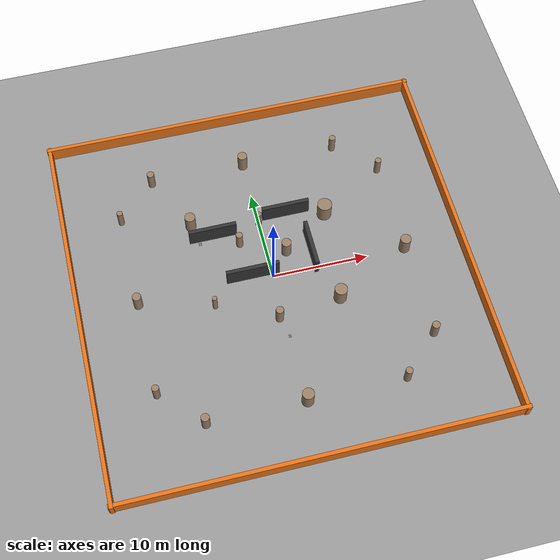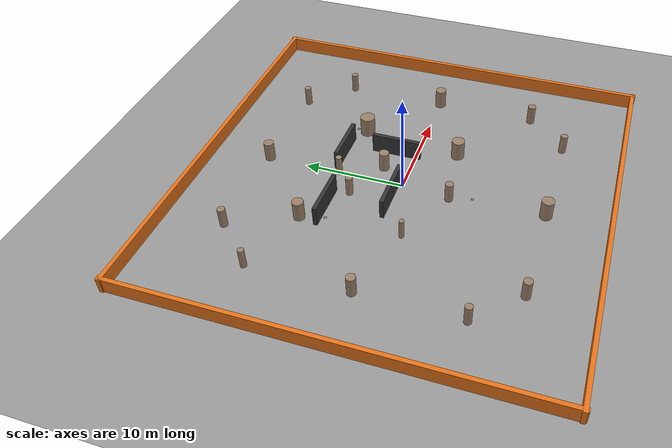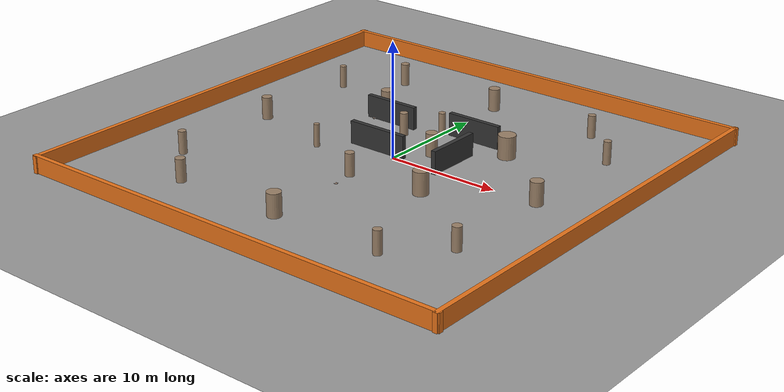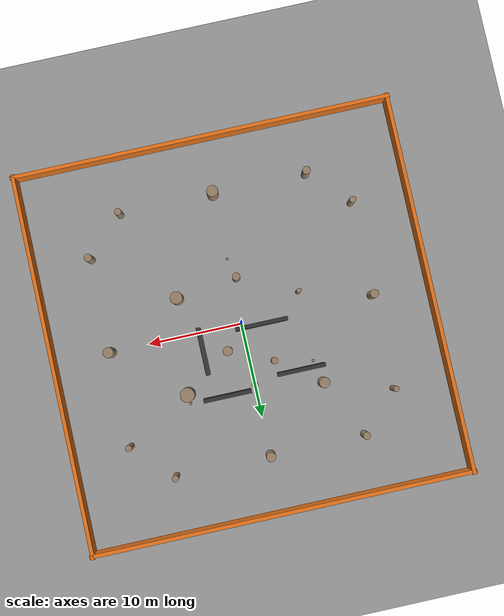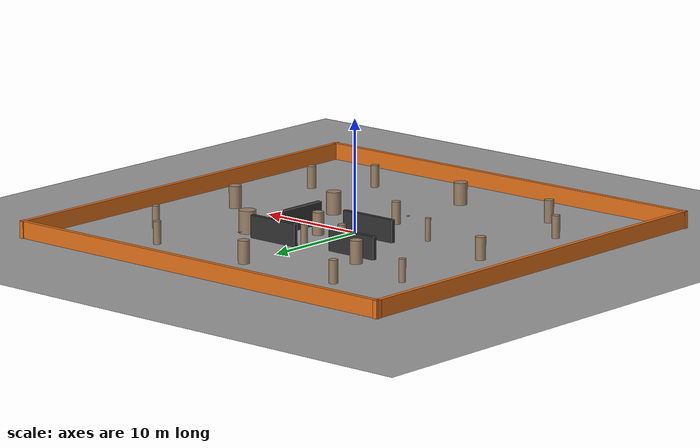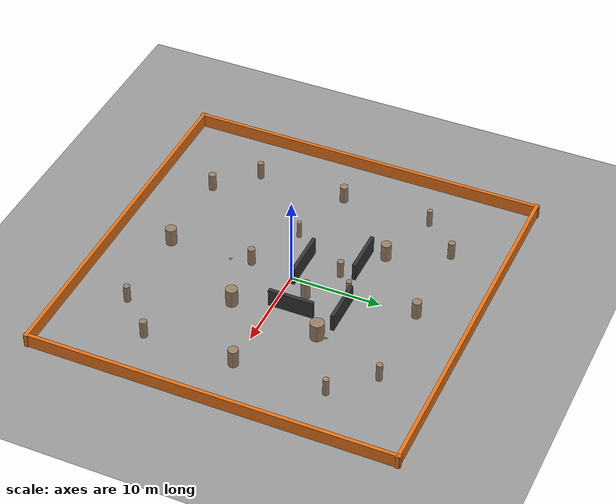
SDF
<sdf version="1.9">
 <world name="playfield">
  <physics name="4ms" type="ode">
   <max_step_size>0.004</max_step_size>
   <real_time_factor>1.0</real_time_factor>
   <real_time_update_rate>250</real_time_update_rate>
  </physics>
  <plugin filename="gz-sim-physics-system" name="gz::sim::systems::Physics"/>
  <plugin filename="gz-sim-user-commands-system" name="gz::sim::systems::UserCommands"/>
  <plugin filename="gz-sim-contact-system" name="gz::sim::systems::Contact"/>
  <plugin filename="gz-sim-imu-system" name="gz::sim::systems::Imu"/>
  <plugin filename="gz-sim-air-pressure-system" name="gz::sim::systems::AirPressure"/>
  <plugin filename="gz-sim-apply-link-wrench-system" name="gz::sim::systems::ApplyLinkWrench"/>
  <plugin filename="gz-sim-navsat-system" name="gz::sim::systems::NavSat"/>
  <plugin filename="gz-sim-sensors-system" name="gz::sim::systems::Sensors">
   <render_engine>ogre2</render_engine>
  </plugin>
  <plugin filename="gz-sim-scene-broadcaster-system" name="gz::sim::systems::SceneBroadcaster"/>
  <light type="directional" name="sun">
   <cast_shadows>false</cast_shadows>
   <pose>0 0 10 0 0 0</pose>
   <diffuse>0.8 0.8 0.8 1</diffuse>
   <specular>0.2 0.2 0.2 1</specular>
   <attenuation>
    <range>1000</range>
    <constant>0.9</constant>
    <linear>0.01</linear>
    <quadratic>0.001</quadratic>
   </attenuation>
   <direction>-0.5 0.1 -0.9</direction>
  </light>
  <model name="ground_plane">
   <static>true</static>
   <link name="link">
    <collision name="collision">
     <geometry><plane><normal>0 0 1</normal><size>40 40</size></plane></geometry>
    </collision>
    <visual name="visual">
     <geometry><plane><normal>0 0 1</normal><size>40 40</size></plane></geometry>
     <material>
      <ambient>0.6 0.6 0.6 1</ambient>
      <diffuse>0.6 0.6 0.6 1</diffuse>
      <specular>0.2 0.2 0.2 1</specular>
     </material>
    </visual>
   </link>
  </model>
  <model name="perimeter_wall_north">
   <static>true</static>
   <pose>0 20 0 0 0 0</pose>
   <link name="link">
    <collision name="collision">
     <pose>0 0 0.75 0 0 0</pose>
     <geometry><box><size>40.6 0.4 1.5</size></box></geometry>
    </collision>
    <visual name="visual">
     <pose>0 0 0.75 0 0 0</pose>
     <geometry><box><size>40.6 0.4 1.5</size></box></geometry>
     <material><ambient>0.9 0.45 0.1 1</ambient><diffuse>0.9 0.45 0.1 1</diffuse></material>
    </visual>
   </link>
  </model>
  <model name="perimeter_wall_south">
   <static>true</static>
   <pose>0 -20 0 0 0 0</pose>
   <link name="link">
    <collision name="collision">
     <pose>0 0 0.75 0 0 0</pose>
     <geometry><box><size>40.6 0.4 1.5</size></box></geometry>
    </collision>
    <visual name="visual">
     <pose>0 0 0.75 0 0 0</pose>
     <geometry><box><size>40.6 0.4 1.5</size></box></geometry>
     <material><ambient>0.9 0.45 0.1 1</ambient><diffuse>0.9 0.45 0.1 1</diffuse></material>
    </visual>
   </link>
  </model>
  <model name="perimeter_wall_east">
   <static>true</static>
   <pose>20 0 0 0 0 0</pose>
   <link name="link">
    <collision name="collision">
     <pose>0 0 0.75 0 0 0</pose>
     <geometry><box><size>0.4 40.6 1.5</size></box></geometry>
    </collision>
    <visual name="visual">
     <pose>0 0 0.75 0 0 0</pose>
     <geometry><box><size>0.4 40.6 1.5</size></box></geometry>
     <material><ambient>0.9 0.45 0.1 1</ambient><diffuse>0.9 0.45 0.1 1</diffuse></material>
    </visual>
   </link>
  </model>
  <model name="perimeter_wall_west">
   <static>true</static>
   <pose>-20 0 0 0 0 0</pose>
   <link name="link">
    <collision name="collision">
     <pose>0 0 0.75 0 0 0</pose>
     <geometry><box><size>0.4 40.6 1.5</size></box></geometry>
    </collision>
    <visual name="visual">
     <pose>0 0 0.75 0 0 0</pose>
     <geometry><box><size>0.4 40.6 1.5</size></box></geometry>
     <material><ambient>0.9 0.45 0.1 1</ambient><diffuse>0.9 0.45 0.1 1</diffuse></material>
    </visual>
   </link>
  </model>
  <model name="wall_a">
   <static>true</static>
   <pose>-2.0 0.5 0 0 0 0</pose>
   <link name="link">
    <collision name="collision">
     <pose>0 0 1 0 0 0</pose>
     <geometry><box><size>5.5 0.4 2</size></box></geometry>
    </collision>
    <visual name="visual">
     <pose>0 0 1 0 0 0</pose>
     <geometry><box><size>5.5 0.4 2</size></box></geometry>
     <material><ambient>0.15 0.15 0.15 1</ambient><diffuse>0.2 0.2 0.2 1</diffuse></material>
    </visual>
   </link>
  </model>
  <model name="wall_b">
   <static>true</static>
   <pose>4.5 2.0 0 0 0 1.5708</pose>
   <link name="link">
    <collision name="collision">
     <pose>0 0 1 0 0 0</pose>
     <geometry><box><size>5.0 0.4 2</size></box></geometry>
    </collision>
    <visual name="visual">
     <pose>0 0 1 0 0 0</pose>
     <geometry><box><size>5.0 0.4 2</size></box></geometry>
     <material><ambient>0.15 0.15 0.15 1</ambient><diffuse>0.2 0.2 0.2 1</diffuse></material>
    </visual>
   </link>
  </model>
  <model name="wall_c">
   <static>true</static>
   <pose>-5.0 6.0 0 0 0 0</pose>
   <link name="link">
    <collision name="collision">
     <pose>0 0 1 0 0 0</pose>
     <geometry><box><size>5.0 0.4 2</size></box></geometry>
    </collision>
    <visual name="visual">
     <pose>0 0 1 0 0 0</pose>
     <geometry><box><size>5.0 0.4 2</size></box></geometry>
     <material><ambient>0.15 0.15 0.15 1</ambient><diffuse>0.2 0.2 0.2 1</diffuse></material>
    </visual>
   </link>
  </model>
  <model name="wall_d">
   <static>true</static>
   <pose>3.0 7.0 0 0 0 0</pose>
   <link name="link">
    <collision name="collision">
     <pose>0 0 1 0 0 0</pose>
     <geometry><box><size>5.0 0.4 2</size></box></geometry>
    </collision>
    <visual name="visual">
     <pose>0 0 1 0 0 0</pose>
     <geometry><box><size>5.0 0.4 2</size></box></geometry>
     <material><ambient>0.15 0.15 0.15 1</ambient><diffuse>0.2 0.2 0.2 1</diffuse></material>
    </visual>
   </link>
  </model>
  <model name="pillar_1">
   <static>true</static>
   <pose>-6.5 -2.0 0 0 0 0</pose>
   <link name="link">
    <collision name="collision">
     <pose>0 0 1 0 0 0</pose>
     <geometry><cylinder><radius>0.25</radius><length>2</length></cylinder></geometry>
    </collision>
    <visual name="visual">
     <pose>0 0 1 0 0 0</pose>
     <geometry><cylinder><radius>0.25</radius><length>2</length></cylinder></geometry>
     <material><ambient>0.5 0.4 0.3 1</ambient><diffuse>0.6 0.5 0.4 1</diffuse></material>
    </visual>
   </link>
  </model>
  <model name="pillar_2">
   <static>true</static>
   <pose>-2.5 4.5 0 0 0 0</pose>
   <link name="link">
    <collision name="collision">
     <pose>0 0 1 0 0 0</pose>
     <geometry><cylinder><radius>0.35</radius><length>2</length></cylinder></geometry>
    </collision>
    <visual name="visual">
     <pose>0 0 1 0 0 0</pose>
     <geometry><cylinder><radius>0.35</radius><length>2</length></cylinder></geometry>
     <material><ambient>0.5 0.4 0.3 1</ambient><diffuse>0.6 0.5 0.4 1</diffuse></material>
    </visual>
   </link>
  </model>
  <model name="pillar_3">
   <static>true</static>
   <pose>2.0 2.5 0 0 0 0</pose>
   <link name="link">
    <collision name="collision">
     <pose>0 0 1 0 0 0</pose>
     <geometry><cylinder><radius>0.50</radius><length>2</length></cylinder></geometry>
    </collision>
    <visual name="visual">
     <pose>0 0 1 0 0 0</pose>
     <geometry><cylinder><radius>0.50</radius><length>2</length></cylinder></geometry>
     <material><ambient>0.5 0.4 0.3 1</ambient><diffuse>0.6 0.5 0.4 1</diffuse></material>
    </visual>
   </link>
  </model>
  <model name="pillar_4">
   <static>true</static>
   <pose>6.0 -4.0 0 0 0 0</pose>
   <link name="link">
    <collision name="collision">
     <pose>0 0 1 0 0 0</pose>
     <geometry><cylinder><radius>0.65</radius><length>2</length></cylinder></geometry>
    </collision>
    <visual name="visual">
     <pose>0 0 1 0 0 0</pose>
     <geometry><cylinder><radius>0.65</radius><length>2</length></cylinder></geometry>
     <material><ambient>0.5 0.4 0.3 1</ambient><diffuse>0.6 0.5 0.4 1</diffuse></material>
    </visual>
   </link>
  </model>
  <model name="pillar_5">
   <static>true</static>
   <pose>0.0 6.5 0 0 0 0</pose>
   <link name="link">
    <collision name="collision">
     <pose>0 0 1 0 0 0</pose>
     <geometry><cylinder><radius>0.30</radius><length>2</length></cylinder></geometry>
    </collision>
    <visual name="visual">
     <pose>0 0 1 0 0 0</pose>
     <geometry><cylinder><radius>0.30</radius><length>2</length></cylinder></geometry>
     <material><ambient>0.5 0.4 0.3 1</ambient><diffuse>0.6 0.5 0.4 1</diffuse></material>
    </visual>
   </link>
  </model>
  <model name="pillar_6">
   <static>true</static>
   <pose>-7.0 7.8 0 0 0 0</pose>
   <link name="link">
    <collision name="collision">
     <pose>0 0 1 0 0 0</pose>
     <geometry><cylinder><radius>0.55</radius><length>2</length></cylinder></geometry>
    </collision>
    <visual name="visual">
     <pose>0 0 1 0 0 0</pose>
     <geometry><cylinder><radius>0.55</radius><length>2</length></cylinder></geometry>
     <material><ambient>0.5 0.4 0.3 1</ambient><diffuse>0.6 0.5 0.4 1</diffuse></material>
    </visual>
   </link>
  </model>
  <model name="pillar_7">
   <static>true</static>
   <pose>-0.5 -4.8 0 0 0 0</pose>
   <link name="link">
    <collision name="collision">
     <pose>0 0 1 0 0 0</pose>
     <geometry><cylinder><radius>0.40</radius><length>2</length></cylinder></geometry>
    </collision>
    <visual name="visual">
     <pose>0 0 1 0 0 0</pose>
     <geometry><cylinder><radius>0.40</radius><length>2</length></cylinder></geometry>
     <material><ambient>0.5 0.4 0.3 1</ambient><diffuse>0.6 0.5 0.4 1</diffuse></material>
    </visual>
   </link>
  </model>
  <model name="pillar_8">
   <static>true</static>
   <pose>7.0 6.0 0 0 0 0</pose>
   <link name="link">
    <collision name="collision">
     <pose>0 0 1 0 0 0</pose>
     <geometry><cylinder><radius>0.75</radius><length>2</length></cylinder></geometry>
    </collision>
    <visual name="visual">
     <pose>0 0 1 0 0 0</pose>
     <geometry><cylinder><radius>0.75</radius><length>2</length></cylinder></geometry>
     <material><ambient>0.5 0.4 0.3 1</ambient><diffuse>0.6 0.5 0.4 1</diffuse></material>
    </visual>
   </link>
  </model>
  <model name="outer_pillar_1">
   <static>true</static>
   <pose>-14.0 -10.0 0 0 0 0</pose>
   <link name="link">
    <collision name="collision">
     <pose>0 0 1 0 0 0</pose>
     <geometry><cylinder><radius>0.35</radius><length>2</length></cylinder></geometry>
    </collision>
    <visual name="visual">
     <pose>0 0 1 0 0 0</pose>
     <geometry><cylinder><radius>0.35</radius><length>2</length></cylinder></geometry>
     <material><ambient>0.5 0.4 0.3 1</ambient><diffuse>0.6 0.5 0.4 1</diffuse></material>
    </visual>
   </link>
  </model>
  <model name="outer_pillar_2">
   <static>true</static>
   <pose>-14.0 0.0 0 0 0 0</pose>
   <link name="link">
    <collision name="collision">
     <pose>0 0 1 0 0 0</pose>
     <geometry><cylinder><radius>0.45</radius><length>2</length></cylinder></geometry>
    </collision>
    <visual name="visual">
     <pose>0 0 1 0 0 0</pose>
     <geometry><cylinder><radius>0.45</radius><length>2</length></cylinder></geometry>
     <material><ambient>0.5 0.4 0.3 1</ambient><diffuse>0.6 0.5 0.4 1</diffuse></material>
    </visual>
   </link>
  </model>
  <model name="outer_pillar_3">
   <static>true</static>
   <pose>-14.0 10.0 0 0 0 0</pose>
   <link name="link">
    <collision name="collision">
     <pose>0 0 1 0 0 0</pose>
     <geometry><cylinder><radius>0.30</radius><length>2</length></cylinder></geometry>
    </collision>
    <visual name="visual">
     <pose>0 0 1 0 0 0</pose>
     <geometry><cylinder><radius>0.30</radius><length>2</length></cylinder></geometry>
     <material><ambient>0.5 0.4 0.3 1</ambient><diffuse>0.6 0.5 0.4 1</diffuse></material>
    </visual>
   </link>
  </model>
  <model name="outer_pillar_4">
   <static>true</static>
   <pose>14.0 -10.0 0 0 0 0</pose>
   <link name="link">
    <collision name="collision">
     <pose>0 0 1 0 0 0</pose>
     <geometry><cylinder><radius>0.40</radius><length>2</length></cylinder></geometry>
    </collision>
    <visual name="visual">
     <pose>0 0 1 0 0 0</pose>
     <geometry><cylinder><radius>0.40</radius><length>2</length></cylinder></geometry>
     <material><ambient>0.5 0.4 0.3 1</ambient><diffuse>0.6 0.5 0.4 1</diffuse></material>
    </visual>
   </link>
  </model>
  <model name="outer_pillar_5">
   <static>true</static>
   <pose>14.0 0.0 0 0 0 0</pose>
   <link name="link">
    <collision name="collision">
     <pose>0 0 1 0 0 0</pose>
     <geometry><cylinder><radius>0.55</radius><length>2</length></cylinder></geometry>
    </collision>
    <visual name="visual">
     <pose>0 0 1 0 0 0</pose>
     <geometry><cylinder><radius>0.55</radius><length>2</length></cylinder></geometry>
     <material><ambient>0.5 0.4 0.3 1</ambient><diffuse>0.6 0.5 0.4 1</diffuse></material>
    </visual>
   </link>
  </model>
  <model name="outer_pillar_6">
   <static>true</static>
   <pose>14.0 10.0 0 0 0 0</pose>
   <link name="link">
    <collision name="collision">
     <pose>0 0 1 0 0 0</pose>
     <geometry><cylinder><radius>0.33</radius><length>2</length></cylinder></geometry>
    </collision>
    <visual name="visual">
     <pose>0 0 1 0 0 0</pose>
     <geometry><cylinder><radius>0.33</radius><length>2</length></cylinder></geometry>
     <material><ambient>0.5 0.4 0.3 1</ambient><diffuse>0.6 0.5 0.4 1</diffuse></material>
    </visual>
   </link>
  </model>
  <model name="outer_pillar_7">
   <static>true</static>
   <pose>-10.0 14.0 0 0 0 0</pose>
   <link name="link">
    <collision name="collision">
     <pose>0 0 1 0 0 0</pose>
     <geometry><cylinder><radius>0.38</radius><length>2</length></cylinder></geometry>
    </collision>
    <visual name="visual">
     <pose>0 0 1 0 0 0</pose>
     <geometry><cylinder><radius>0.38</radius><length>2</length></cylinder></geometry>
     <material><ambient>0.5 0.4 0.3 1</ambient><diffuse>0.6 0.5 0.4 1</diffuse></material>
    </visual>
   </link>
  </model>
  <model name="outer_pillar_8">
   <static>true</static>
   <pose>0.0 14.0 0 0 0 0</pose>
   <link name="link">
    <collision name="collision">
     <pose>0 0 1 0 0 0</pose>
     <geometry><cylinder><radius>0.50</radius><length>2</length></cylinder></geometry>
    </collision>
    <visual name="visual">
     <pose>0 0 1 0 0 0</pose>
     <geometry><cylinder><radius>0.50</radius><length>2</length></cylinder></geometry>
     <material><ambient>0.5 0.4 0.3 1</ambient><diffuse>0.6 0.5 0.4 1</diffuse></material>
    </visual>
   </link>
  </model>
  <model name="outer_pillar_9">
   <static>true</static>
   <pose>10.0 14.0 0 0 0 0</pose>
   <link name="link">
    <collision name="collision">
     <pose>0 0 1 0 0 0</pose>
     <geometry><cylinder><radius>0.34</radius><length>2</length></cylinder></geometry>
    </collision>
    <visual name="visual">
     <pose>0 0 1 0 0 0</pose>
     <geometry><cylinder><radius>0.34</radius><length>2</length></cylinder></geometry>
     <material><ambient>0.5 0.4 0.3 1</ambient><diffuse>0.6 0.5 0.4 1</diffuse></material>
    </visual>
   </link>
  </model>
  <model name="outer_pillar_10">
   <static>true</static>
   <pose>-10.0 -14.0 0 0 0 0</pose>
   <link name="link">
    <collision name="collision">
     <pose>0 0 1 0 0 0</pose>
     <geometry><cylinder><radius>0.42</radius><length>2</length></cylinder></geometry>
    </collision>
    <visual name="visual">
     <pose>0 0 1 0 0 0</pose>
     <geometry><cylinder><radius>0.42</radius><length>2</length></cylinder></geometry>
     <material><ambient>0.5 0.4 0.3 1</ambient><diffuse>0.6 0.5 0.4 1</diffuse></material>
    </visual>
   </link>
  </model>
  <model name="outer_pillar_11">
   <static>true</static>
   <pose>0.0 -14.0 0 0 0 0</pose>
   <link name="link">
    <collision name="collision">
     <pose>0 0 1 0 0 0</pose>
     <geometry><cylinder><radius>0.60</radius><length>2</length></cylinder></geometry>
    </collision>
    <visual name="visual">
     <pose>0 0 1 0 0 0</pose>
     <geometry><cylinder><radius>0.60</radius><length>2</length></cylinder></geometry>
     <material><ambient>0.5 0.4 0.3 1</ambient><diffuse>0.6 0.5 0.4 1</diffuse></material>
    </visual>
   </link>
  </model>
  <model name="outer_pillar_12">
   <static>true</static>
   <pose>10.0 -14.0 0 0 0 0</pose>
   <link name="link">
    <collision name="collision">
     <pose>0 0 1 0 0 0</pose>
     <geometry><cylinder><radius>0.36</radius><length>2</length></cylinder></geometry>
    </collision>
    <visual name="visual">
     <pose>0 0 1 0 0 0</pose>
     <geometry><cylinder><radius>0.36</radius><length>2</length></cylinder></geometry>
     <material><ambient>0.5 0.4 0.3 1</ambient><diffuse>0.6 0.5 0.4 1</diffuse></material>
    </visual>
   </link>
  </model>
  <include><uri>model://rex_quadcopter</uri><name>robot</name><pose>0 -7 0.05 0 0 0</pose></include>
  <include><uri>model://rex_quadcopter_2</uri><name>robot2</name><pose>-6.5 5.4 0.05 0 0 1.5708</pose></include>
  <include><uri>model://rex_quadcopter_3</uri><name>robot3</name><pose>7 7 0.05 0 0 3.1416</pose></include>
 </world>
</sdf>

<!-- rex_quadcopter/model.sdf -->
<sdf version="1.9">
  <model name="rex_quadcopter">
    <static>false</static>

    <!-- Main body link -->
    <link name="base_link">
      <pose>0 0 0.15 0 0 0</pose>

      <inertial>
        <mass>0.3</mass>
        <inertia>
          <ixx>0.001</ixx>
          <iyy>0.001</iyy>
          <izz>0.002</izz>
          <ixy>0</ixy>
          <ixz>0</ixz>
          <iyz>0</iyz>
        </inertia>
      </inertial>

      <!-- Disable gravity on the link (re-enable when you add rotors) -->
      <gravity>false</gravity>

      <!-- Simple collision box -->
      <collision name="body_collision">
        <geometry>
          <box>
            <size>0.15 0.15 0.05</size>
          </box>
        </geometry>
      </collision>

      <!-- ===================== FRAME (dual plates) ===================== -->
      <visual name="frame_top">
        <pose>0 0 0.020 0 0 0</pose>
        <geometry><box><size>0.18 0.18 0.004</size></box></geometry>
        <material>
          <ambient>0.65 0.55 0.45 1</ambient>
          <diffuse>0.75 0.60 0.50 1</diffuse>
          <specular>0.2 0.2 0.2 1</specular>
        </material>
      </visual>

      <visual name="frame_bottom">
        <pose>0 0 -0.020 0 0 0</pose>
        <geometry><box><size>0.18 0.18 0.004</size></box></geometry>
        <material>
          <ambient>0.65 0.55 0.45 1</ambient>
          <diffuse>0.75 0.60 0.50 1</diffuse>
          <specular>0.2 0.2 0.2 1</specular>
        </material>
      </visual>

      <!-- ===================== GOLD STANDOFFS ===================== -->
      <visual name="standoff_fr">
        <pose> 0.07  0.07 0 0 0 0</pose>
        <geometry><cylinder><radius>0.004</radius><length>0.040</length></cylinder></geometry>
        <material><ambient>0.9 0.8 0.3 1</ambient><diffuse>1.0 0.85 0.35 1</diffuse></material>
      </visual>
      <visual name="standoff_fl">
        <pose>-0.07  0.07 0 0 0 0</pose>
        <geometry><cylinder><radius>0.004</radius><length>0.040</length></cylinder></geometry>
        <material><ambient>0.9 0.8 0.3 1</ambient><diffuse>1.0 0.85 0.35 1</diffuse></material>
      </visual>
      <visual name="standoff_br">
        <pose> 0.07 -0.07 0 0 0 0</pose>
        <geometry><cylinder><radius>0.004</radius><length>0.040</length></cylinder></geometry>
        <material><ambient>0.9 0.8 0.3 1</ambient><diffuse>1.0 0.85 0.35 1</diffuse></material>
      </visual>
      <visual name="standoff_bl">
        <pose>-0.07 -0.07 0 0 0 0</pose>
        <geometry><cylinder><radius>0.004</radius><length>0.040</length></cylinder></geometry>
      </visual>

      <!-- ===================== THIN GOLD LEGS / PINS ===================== -->
      <visual name="leg_fr">
        <pose> 0.055  0.055 -0.040 0 0 0</pose>
        <geometry><cylinder><radius>0.0025</radius><length>0.030</length></cylinder></geometry>
      </visual>
      <visual name="leg_fl">
        <pose>-0.055  0.055 -0.040 0 0 0</pose>
        <geometry><cylinder><radius>0.0025</radius><length>0.030</length></cylinder></geometry>
      </visual>
      <visual name="leg_br">
        <pose> 0.055 -0.055 -0.040 0 0 0</pose>
        <geometry><cylinder><radius>0.0025</radius><length>0.030</length></cylinder></geometry>
      </visual>
      <visual name="leg_bl">
        <pose>-0.055 -0.055 -0.040 0 0 0</pose>
        <geometry><cylinder><radius>0.0025</radius><length>0.030</length></cylinder></geometry>
      </visual>

      <!-- ===================== MOTOR CANS ===================== -->
      <visual name="motor_fr">
        <pose> 0.095  0.095 0.012 0 0 0</pose>
        <geometry><cylinder><radius>0.018</radius><length>0.018</length></cylinder></geometry>
      </visual>
      <visual name="motor_fl">
        <pose>-0.095  0.095 0.012 0 0 0</pose>
        <geometry><cylinder><radius>0.018</radius><length>0.018</length></cylinder></geometry>
      </visual>
      <visual name="motor_br">
        <pose> 0.095 -0.095 0.012 0 0 0</pose>
        <geometry><cylinder><radius>0.018</radius><length>0.018</length></cylinder></geometry>
      </visual>
      <visual name="motor_bl">
        <pose>-0.095 -0.095 0.012 0 0 0</pose>
        <geometry><cylinder><radius>0.018</radius><length>0.018</length></cylinder></geometry>
      </visual>

      <!-- ===================== DARK PROPS ABOVE MOTORS ===================== -->
      <visual name="prop_fr">
        <pose> 0.095  0.095 0.022 0 0 0</pose>
        <geometry><cylinder><radius>0.050</radius><length>0.0015</length></cylinder></geometry>
      </visual>
      <visual name="prop_fl">
        <pose>-0.095  0.095 0.022 0 0 0</pose>
        <geometry><cylinder><radius>0.050</radius><length>0.0015</length></cylinder></geometry>
      </visual>
      <visual name="prop_br">
        <pose> 0.095 -0.095 0.022 0 0 0</pose>
        <geometry><cylinder><radius>0.050</radius><length>0.0015</length></cylinder></geometry>
      </visual>
      <visual name="prop_bl">
        <pose>-0.095 -0.095 0.022 0 0 0</pose>
        <geometry><cylinder><radius>0.050</radius><length>0.0015</length></cylinder></geometry>
      </visual>

      <!-- ===================== BLUE STATUS LED ===================== -->
      <visual name="status_led">
        <pose>0 0 -0.018 0 0 0</pose>
        <geometry><sphere><radius>0.006</radius></sphere></geometry>
      </visual>

      <!-- ===================== 8 RAY-BASED RANGE SENSORS ===================== -->
      <!-- Simple laser beams publishing LaserScan messages for debugging. -->
      <sensor name="tof_front" type="gpu_lidar">
        <pose>0.12 0 0 0 0 0</pose>
        <lidar>
          <scan>
            <horizontal>
              <samples>5</samples>
              <resolution>1</resolution>
              <min_angle>-0.5235987756</min_angle>
              <max_angle>0.5235987756</max_angle>
            </horizontal>
          </scan>
          <range>
            <min>0.05</min>
            <max>6.0</max>
            <resolution>0.001</resolution>
          </range>
        </lidar>
        <always_on>true</always_on>
        <update_rate>20</update_rate>
        <visualize>true</visualize>
        <topic>/world/playfield/model/robot/link/base_link/sensor/tof_front/scan</topic>
      </sensor>

      <sensor name="tof_front_right" type="gpu_lidar">
        <pose>0.085 0.085 0 0 0 0.7853981634</pose>
        <lidar>
          <scan>
            <horizontal>
              <samples>5</samples>
              <resolution>1</resolution>
              <min_angle>-0.5235987756</min_angle>
              <max_angle>0.5235987756</max_angle>
            </horizontal>
          </scan>
          <range>
            <min>0.05</min>
            <max>6.0</max>
            <resolution>0.001</resolution>
          </range>
        </lidar>
        <always_on>true</always_on>
        <update_rate>20</update_rate>
        <visualize>true</visualize>
        <topic>/world/playfield/model/robot/link/base_link/sensor/tof_front_right/scan</topic>
      </sensor>

      <sensor name="tof_right" type="gpu_lidar">
        <pose>0 0.12 0 0 0 1.5707963268</pose>
        <lidar>
          <scan>
            <horizontal>
              <samples>5</samples>
              <resolution>1</resolution>
              <min_angle>-0.5235987756</min_angle>
              <max_angle>0.5235987756</max_angle>
            </horizontal>
          </scan>
          <range>
            <min>0.05</min>
            <max>6.0</max>
            <resolution>0.001</resolution>
          </range>
        </lidar>
        <always_on>true</always_on>
        <update_rate>20</update_rate>
        <visualize>true</visualize>
        <topic>/world/playfield/model/robot/link/base_link/sensor/tof_right/scan</topic>
      </sensor>

      <sensor name="tof_back_right" type="gpu_lidar">
        <pose>-0.085 0.085 0 0 0 2.3561944902</pose>
        <lidar>
          <scan>
            <horizontal>
              <samples>5</samples>
              <resolution>1</resolution>
              <min_angle>-0.5235987756</min_angle>
              <max_angle>0.5235987756</max_angle>
            </horizontal>
          </scan>
          <range>
            <min>0.05</min>
            <max>6.0</max>
            <resolution>0.001</resolution>
          </range>
        </lidar>
        <always_on>true</always_on>
        <update_rate>20</update_rate>
        <visualize>true</visualize>
        <topic>/world/playfield/model/robot/link/base_link/sensor/tof_back_right/scan</topic>
      </sensor>

      <sensor name="tof_back" type="gpu_lidar">
        <pose>-0.12 0 0 0 0 3.1415926536</pose>
        <lidar>
          <scan>
            <horizontal>
              <samples>5</samples>
              <resolution>1</resolution>
              <min_angle>-0.5235987756</min_angle>
              <max_angle>0.5235987756</max_angle>
            </horizontal>
          </scan>
          <range>
            <min>0.05</min>
            <max>6.0</max>
            <resolution>0.001</resolution>
          </range>
        </lidar>
        <always_on>true</always_on>
        <update_rate>20</update_rate>
        <visualize>true</visualize>
        <topic>/world/playfield/model/robot/link/base_link/sensor/tof_back/scan</topic>
      </sensor>

      <sensor name="tof_back_left" type="gpu_lidar">
        <pose>-0.085 -0.085 0 0 0 -2.3561944902</pose>
        <lidar>
          <scan>
            <horizontal>
              <samples>5</samples>
              <resolution>1</resolution>
              <min_angle>-0.5235987756</min_angle>
              <max_angle>0.5235987756</max_angle>
            </horizontal>
          </scan>
          <range>
            <min>0.05</min>
            <max>6.0</max>
            <resolution>0.001</resolution>
          </range>
        </lidar>
        <always_on>true</always_on>
        <update_rate>20</update_rate>
        <visualize>true</visualize>
        <topic>/world/playfield/model/robot/link/base_link/sensor/tof_back_left/scan</topic>
      </sensor>

      <sensor name="tof_left" type="gpu_lidar">
        <pose>0 -0.12 0 0 0 -1.5707963268</pose>
        <lidar>
          <scan>
            <horizontal>
              <samples>5</samples>
              <resolution>1</resolution>
              <min_angle>-0.5235987756</min_angle>
              <max_angle>0.5235987756</max_angle>
            </horizontal>
          </scan>
          <range>
            <min>0.05</min>
            <max>6.0</max>
            <resolution>0.001</resolution>
          </range>
        </lidar>
        <always_on>true</always_on>
        <update_rate>20</update_rate>
        <visualize>true</visualize>
        <topic>/world/playfield/model/robot/link/base_link/sensor/tof_left/scan</topic>
      </sensor>

      <sensor name="tof_front_left" type="gpu_lidar">
        <pose>0.085 -0.085 0 0 0 -0.7853981634</pose>
        <lidar>
          <scan>
            <horizontal>
              <samples>5</samples>
              <resolution>1</resolution>
              <min_angle>-0.5235987756</min_angle>
              <max_angle>0.5235987756</max_angle>
            </horizontal>
          </scan>
          <range>
            <min>0.05</min>
            <max>6.0</max>
            <resolution>0.001</resolution>
          </range>
        </lidar>
        <always_on>true</always_on>
        <update_rate>20</update_rate>
        <visualize>true</visualize>
        <topic>/world/playfield/model/robot/link/base_link/sensor/tof_front_left/scan</topic>
      </sensor>

    </link>

    <!-- Velocity control and odometry plugins -->
    <plugin name="gz::sim::systems::VelocityControl" filename="gz-sim-velocity-control-system">
      <topic>/cmd_vel</topic>
      <use_world_frame>false</use_world_frame>
      <max_linear_velocity>3</max_linear_velocity>
      <max_angular_velocity>2</max_angular_velocity>
    </plugin>

    <plugin name="gz::sim::systems::OdometryPublisher" filename="gz-sim-odometry-publisher-system">
      <topic>/odom</topic>
      <frame_id>robot/odom</frame_id>
      <child_frame_id>robot/base_link</child_frame_id>
      <publish_tf>true</publish_tf>
    </plugin>

  </model>
</sdf>

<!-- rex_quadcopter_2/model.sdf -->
<sdf version="1.9">
  <model name="rex_quadcopter_2">
    <static>false</static>

    <!-- Main body link -->
    <link name="base_link">
      <pose>0 0 0.15 0 0 0</pose>

      <inertial>
        <mass>0.3</mass>
        <inertia>
          <ixx>0.001</ixx>
          <iyy>0.001</iyy>
          <izz>0.002</izz>
          <ixy>0</ixy>
          <ixz>0</ixz>
          <iyz>0</iyz>
        </inertia>
      </inertial>

      <!-- Disable gravity on the link (re-enable when you add rotors) -->
      <gravity>false</gravity>

      <!-- Add damping so the "hovering" robot doesn't drift forever after cmd_vel goes to zero. -->
      <velocity_decay>
        <linear>1.0</linear>
        <angular>1.0</angular>
      </velocity_decay>

      <!-- Simple collision box -->
      <collision name="body_collision">
        <geometry>
          <box>
            <size>0.15 0.15 0.05</size>
          </box>
        </geometry>
      </collision>

      <!-- ===================== FRAME (dual plates) ===================== -->
      <visual name="frame_top">
        <pose>0 0 0.020 0 0 0</pose>
        <geometry><box><size>0.18 0.18 0.004</size></box></geometry>
        <material>
          <ambient>0.65 0.55 0.45 1</ambient>
          <diffuse>0.75 0.60 0.50 1</diffuse>
          <specular>0.05 0.05 0.05 1</specular>
        </material>
      </visual>
      <visual name="frame_bottom">
        <pose>0 0 -0.020 0 0 0</pose>
        <geometry><box><size>0.18 0.18 0.004</size></box></geometry>
        <material>
          <ambient>0.55 0.45 0.35 1</ambient>
          <diffuse>0.65 0.50 0.40 1</diffuse>
          <specular>0.05 0.05 0.05 1</specular>
        </material>
      </visual>

      <!-- ===================== ARMS (slim bars) ===================== -->
      <visual name="arm_front">
        <pose>0.09 0 0 0 0 0</pose>
        <geometry><box><size>0.10 0.012 0.006</size></box></geometry>
      </visual>
      <visual name="arm_back">
        <pose>-0.09 0 0 0 0 0</pose>
        <geometry><box><size>0.10 0.012 0.006</size></box></geometry>
      </visual>
      <visual name="arm_left">
        <pose>0 0.09 0 0 0 1.5708</pose>
        <geometry><box><size>0.10 0.012 0.006</size></box></geometry>
      </visual>
      <visual name="arm_right">
        <pose>0 -0.09 0 0 0 1.5708</pose>
        <geometry><box><size>0.10 0.012 0.006</size></box></geometry>
      </visual>

      <!-- ===================== ELECTRONICS STACK ===================== -->
      <visual name="electronics_stack">
        <pose>0 0 0.00 0 0 0</pose>
        <geometry><box><size>0.06 0.06 0.03</size></box></geometry>
        <material>
          <ambient>0.08 0.10 0.10 1</ambient>
          <diffuse>0.10 0.15 0.15 1</diffuse>
          <specular>0.02 0.02 0.02 1</specular>
        </material>
      </visual>

      <!-- ===================== BATTERY ===================== -->
      <visual name="battery">
        <pose>0 0 -0.040 0 0 0</pose>
        <geometry><box><size>0.09 0.04 0.03</size></box></geometry>
        <material>
          <ambient>0.10 0.10 0.10 1</ambient>
          <diffuse>0.15 0.15 0.15 1</diffuse>
        </material>
      </visual>

      <!-- ===================== CAMERA / SENSOR POD ===================== -->
      <visual name="sensor_pod">
        <pose>0.07 0 0.01 0 0 0</pose>
        <geometry><box><size>0.04 0.03 0.02</size></box></geometry>
        <material>
          <ambient>0.08 0.08 0.08 1</ambient>
          <diffuse>0.12 0.12 0.12 1</diffuse>
        </material>
      </visual>

      <!-- ===================== PROPELLER GUARDS (thin rings) ===================== -->
      <visual name="guard_fr">
        <pose> 0.095 0.095 0.020 0 0 0</pose>
        <geometry><cylinder><radius>0.060</radius><length>0.002</length></cylinder></geometry>
      </visual>
      <visual name="guard_fl">
        <pose>-0.095 0.095 0.020 0 0 0</pose>
        <geometry><cylinder><radius>0.060</radius><length>0.002</length></cylinder></geometry>
      </visual>
      <visual name="guard_br">
        <pose> 0.095 -0.095 0.020 0 0 0</pose>
        <geometry><cylinder><radius>0.060</radius><length>0.002</length></cylinder></geometry>
      </visual>
      <visual name="guard_bl">
        <pose>-0.095 -0.095 0.020 0 0 0</pose>
        <geometry><cylinder><radius>0.060</radius><length>0.002</length></cylinder></geometry>
      </visual>

      <!-- ===================== PROPELLERS (flat disks) ===================== -->
      <visual name="prop_fr">
        <pose> 0.095 0.095 0.022 0 0 0</pose>
        <geometry><cylinder><radius>0.050</radius><length>0.0015</length></cylinder></geometry>
      </visual>
      <visual name="prop_fl">
        <pose>-0.095 0.095 0.022 0 0 0</pose>
        <geometry><cylinder><radius>0.050</radius><length>0.0015</length></cylinder></geometry>
      </visual>
      <visual name="prop_br">
        <pose> 0.095 -0.095 0.022 0 0 0</pose>
        <geometry><cylinder><radius>0.050</radius><length>0.0015</length></cylinder></geometry>
      </visual>
      <visual name="prop_bl">
        <pose>-0.095 -0.095 0.022 0 0 0</pose>
        <geometry><cylinder><radius>0.050</radius><length>0.0015</length></cylinder></geometry>
      </visual>

      <!-- ===================== BLUE STATUS LED ===================== -->
      <visual name="status_led">
        <pose>0 0 -0.018 0 0 0</pose>
        <geometry><sphere><radius>0.006</radius></sphere></geometry>
      </visual>

      <!-- ===================== 8 RAY-BASED RANGE SENSORS ===================== -->
      <!-- Simple laser beams publishing LaserScan messages for debugging. -->
      <sensor name="tof_front" type="gpu_lidar">
        <pose>0.12 0 0 0 0 0</pose>
        <lidar>
          <scan>
            <horizontal>
              <samples>8</samples>
              <resolution>1</resolution>
              <min_angle>-0.5235987756</min_angle>
              <max_angle>0.5235987756</max_angle>
            </horizontal>
          </scan>
          <range>
            <min>0.05</min>
            <max>6.0</max>
            <resolution>0.001</resolution>
          </range>
        </lidar>
        <always_on>true</always_on>
        <update_rate>10</update_rate>
        <visualize>false</visualize>
      </sensor>

      <sensor name="tof_front_right" type="gpu_lidar">
        <pose>0.085 0.085 0 0 0 0.7853981634</pose>
        <lidar>
          <scan>
            <horizontal>
              <samples>8</samples>
              <resolution>1</resolution>
              <min_angle>-0.5235987756</min_angle>
              <max_angle>0.5235987756</max_angle>
            </horizontal>
          </scan>
          <range>
            <min>0.05</min>
            <max>6.0</max>
            <resolution>0.001</resolution>
          </range>
        </lidar>
        <always_on>true</always_on>
        <update_rate>10</update_rate>
        <visualize>false</visualize>
      </sensor>

      <sensor name="tof_right" type="gpu_lidar">
        <pose>0 0.12 0 0 0 1.5707963268</pose>
        <lidar>
          <scan>
            <horizontal>
              <samples>8</samples>
              <resolution>1</resolution>
              <min_angle>-0.5235987756</min_angle>
              <max_angle>0.5235987756</max_angle>
            </horizontal>
          </scan>
          <range>
            <min>0.05</min>
            <max>6.0</max>
            <resolution>0.001</resolution>
          </range>
        </lidar>
        <always_on>true</always_on>
        <update_rate>10</update_rate>
        <visualize>false</visualize>
      </sensor>

      <sensor name="tof_back_right" type="gpu_lidar">
        <pose>-0.085 0.085 0 0 0 2.3561944902</pose>
        <lidar>
          <scan>
            <horizontal>
              <samples>8</samples>
              <resolution>1</resolution>
              <min_angle>-0.5235987756</min_angle>
              <max_angle>0.5235987756</max_angle>
            </horizontal>
          </scan>
          <range>
            <min>0.05</min>
            <max>6.0</max>
            <resolution>0.001</resolution>
          </range>
        </lidar>
        <always_on>true</always_on>
        <update_rate>10</update_rate>
        <visualize>false</visualize>
      </sensor>

      <sensor name="tof_back" type="gpu_lidar">
        <pose>-0.12 0 0 0 0 3.1415926536</pose>
        <lidar>
          <scan>
            <horizontal>
              <samples>8</samples>
              <resolution>1</resolution>
              <min_angle>-0.5235987756</min_angle>
              <max_angle>0.5235987756</max_angle>
            </horizontal>
          </scan>
          <range>
            <min>0.05</min>
            <max>6.0</max>
            <resolution>0.001</resolution>
          </range>
        </lidar>
        <always_on>true</always_on>
        <update_rate>10</update_rate>
        <visualize>false</visualize>
      </sensor>

      <sensor name="tof_back_left" type="gpu_lidar">
        <pose>-0.085 -0.085 0 0 0 -2.3561944902</pose>
        <lidar>
          <scan>
            <horizontal>
              <samples>8</samples>
              <resolution>1</resolution>
              <min_angle>-0.5235987756</min_angle>
              <max_angle>0.5235987756</max_angle>
            </horizontal>
          </scan>
          <range>
            <min>0.05</min>
            <max>6.0</max>
            <resolution>0.001</resolution>
          </range>
        </lidar>
        <always_on>true</always_on>
        <update_rate>10</update_rate>
        <visualize>false</visualize>
      </sensor>

      <sensor name="tof_left" type="gpu_lidar">
        <pose>0 -0.12 0 0 0 -1.5707963268</pose>
        <lidar>
          <scan>
            <horizontal>
              <samples>8</samples>
              <resolution>1</resolution>
              <min_angle>-0.5235987756</min_angle>
              <max_angle>0.5235987756</max_angle>
            </horizontal>
          </scan>
          <range>
            <min>0.05</min>
            <max>6.0</max>
            <resolution>0.001</resolution>
          </range>
        </lidar>
        <always_on>true</always_on>
        <update_rate>10</update_rate>
        <visualize>false</visualize>
      </sensor>

      <sensor name="tof_front_left" type="gpu_lidar">
        <pose>0.085 -0.085 0 0 0 -0.7853981634</pose>
        <lidar>
          <scan>
            <horizontal>
              <samples>8</samples>
              <resolution>1</resolution>
              <min_angle>-0.5235987756</min_angle>
              <max_angle>0.5235987756</max_angle>
            </horizontal>
          </scan>
          <range>
            <min>0.05</min>
            <max>6.0</max>
            <resolution>0.001</resolution>
          </range>
        </lidar>
        <always_on>true</always_on>
        <update_rate>10</update_rate>
        <visualize>false</visualize>
      </sensor>

    </link>

    <!-- Velocity control and odometry plugins -->
    <plugin name="gz::sim::systems::VelocityControl" filename="gz-sim-velocity-control-system">
      <topic>/cmd_vel_robot2</topic>
      <use_world_frame>false</use_world_frame>
      <max_linear_velocity>3</max_linear_velocity>
      <max_angular_velocity>2</max_angular_velocity>
    </plugin>

    <plugin name="gz::sim::systems::OdometryPublisher" filename="gz-sim-odometry-publisher-system">
      <topic>/odom</topic>
      <frame_id>robot2/odom</frame_id>
      <child_frame_id>robot2/base_link</child_frame_id>
      <publish_tf>true</publish_tf>
    </plugin>

  </model>
</sdf>

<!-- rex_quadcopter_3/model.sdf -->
<sdf version="1.9">
  <model name="rex_quadcopter_3">
    <static>false</static>

    <!-- Main body link -->
    <link name="base_link">
      <pose>0 0 0.15 0 0 0</pose>

      <inertial>
        <mass>0.3</mass>
        <inertia>
          <ixx>0.001</ixx>
          <iyy>0.001</iyy>
          <izz>0.002</izz>
          <ixy>0</ixy>
          <ixz>0</ixz>
          <iyz>0</iyz>
        </inertia>
      </inertial>

      <!-- Disable gravity on the link (re-enable when you add rotors) -->
      <gravity>false</gravity>

      <!-- Add damping so the "hovering" robot doesn't drift forever after cmd_vel goes to zero. -->
      <velocity_decay>
        <linear>1.0</linear>
        <angular>1.0</angular>
      </velocity_decay>

      <!-- Simple collision box -->
      <collision name="body_collision">
        <geometry>
          <box>
            <size>0.15 0.15 0.05</size>
          </box>
        </geometry>
      </collision>

      <!-- ===================== FRAME (dual plates) ===================== -->
      <visual name="frame_top">
        <pose>0 0 0.020 0 0 0</pose>
        <geometry><box><size>0.18 0.18 0.004</size></box></geometry>
        <material>
          <ambient>0.65 0.55 0.45 1</ambient>
          <diffuse>0.75 0.60 0.50 1</diffuse>
          <specular>0.05 0.05 0.05 1</specular>
        </material>
      </visual>
      <visual name="frame_bottom">
        <pose>0 0 -0.020 0 0 0</pose>
        <geometry><box><size>0.18 0.18 0.004</size></box></geometry>
        <material>
          <ambient>0.55 0.45 0.35 1</ambient>
          <diffuse>0.65 0.50 0.40 1</diffuse>
          <specular>0.05 0.05 0.05 1</specular>
        </material>
      </visual>

      <!-- ===================== ARMS (slim bars) ===================== -->
      <visual name="arm_front">
        <pose>0.09 0 0 0 0 0</pose>
        <geometry><box><size>0.10 0.012 0.006</size></box></geometry>
      </visual>
      <visual name="arm_back">
        <pose>-0.09 0 0 0 0 0</pose>
        <geometry><box><size>0.10 0.012 0.006</size></box></geometry>
      </visual>
      <visual name="arm_left">
        <pose>0 0.09 0 0 0 1.5708</pose>
        <geometry><box><size>0.10 0.012 0.006</size></box></geometry>
      </visual>
      <visual name="arm_right">
        <pose>0 -0.09 0 0 0 1.5708</pose>
        <geometry><box><size>0.10 0.012 0.006</size></box></geometry>
      </visual>

      <!-- ===================== ELECTRONICS STACK ===================== -->
      <visual name="electronics_stack">
        <pose>0 0 0.00 0 0 0</pose>
        <geometry><box><size>0.06 0.06 0.03</size></box></geometry>
        <material>
          <ambient>0.08 0.10 0.10 1</ambient>
          <diffuse>0.10 0.15 0.15 1</diffuse>
          <specular>0.02 0.02 0.02 1</specular>
        </material>
      </visual>

      <!-- ===================== BATTERY ===================== -->
      <visual name="battery">
        <pose>0 0 -0.040 0 0 0</pose>
        <geometry><box><size>0.09 0.04 0.03</size></box></geometry>
        <material>
          <ambient>0.10 0.10 0.10 1</ambient>
          <diffuse>0.15 0.15 0.15 1</diffuse>
        </material>
      </visual>

      <!-- ===================== CAMERA / SENSOR POD ===================== -->
      <visual name="sensor_pod">
        <pose>0.07 0 0.01 0 0 0</pose>
        <geometry><box><size>0.04 0.03 0.02</size></box></geometry>
        <material>
          <ambient>0.08 0.08 0.08 1</ambient>
          <diffuse>0.12 0.12 0.12 1</diffuse>
        </material>
      </visual>

      <!-- ===================== PROPELLER GUARDS (thin rings) ===================== -->
      <visual name="guard_fr">
        <pose> 0.095 0.095 0.020 0 0 0</pose>
        <geometry><cylinder><radius>0.060</radius><length>0.002</length></cylinder></geometry>
      </visual>
      <visual name="guard_fl">
        <pose>-0.095 0.095 0.020 0 0 0</pose>
        <geometry><cylinder><radius>0.060</radius><length>0.002</length></cylinder></geometry>
      </visual>
      <visual name="guard_br">
        <pose> 0.095 -0.095 0.020 0 0 0</pose>
        <geometry><cylinder><radius>0.060</radius><length>0.002</length></cylinder></geometry>
      </visual>
      <visual name="guard_bl">
        <pose>-0.095 -0.095 0.020 0 0 0</pose>
        <geometry><cylinder><radius>0.060</radius><length>0.002</length></cylinder></geometry>
      </visual>

      <!-- ===================== PROPELLERS (flat disks) ===================== -->
      <visual name="prop_fr">
        <pose> 0.095 0.095 0.022 0 0 0</pose>
        <geometry><cylinder><radius>0.050</radius><length>0.0015</length></cylinder></geometry>
      </visual>
      <visual name="prop_fl">
        <pose>-0.095 0.095 0.022 0 0 0</pose>
        <geometry><cylinder><radius>0.050</radius><length>0.0015</length></cylinder></geometry>
      </visual>
      <visual name="prop_br">
        <pose> 0.095 -0.095 0.022 0 0 0</pose>
        <geometry><cylinder><radius>0.050</radius><length>0.0015</length></cylinder></geometry>
      </visual>
      <visual name="prop_bl">
        <pose>-0.095 -0.095 0.022 0 0 0</pose>
        <geometry><cylinder><radius>0.050</radius><length>0.0015</length></cylinder></geometry>
      </visual>

      <!-- ===================== BLUE STATUS LED ===================== -->
      <visual name="status_led">
        <pose>0 0 -0.018 0 0 0</pose>
        <geometry><sphere><radius>0.006</radius></sphere></geometry>
      </visual>

      <!-- ===================== 8 RAY-BASED RANGE SENSORS ===================== -->
      <!-- Simple laser beams publishing LaserScan messages for debugging. -->
      <sensor name="tof_front" type="gpu_lidar">
        <pose>0.12 0 0 0 0 0</pose>
        <lidar>
          <scan>
            <horizontal>
              <samples>8</samples>
              <resolution>1</resolution>
              <min_angle>-0.5235987756</min_angle>
              <max_angle>0.5235987756</max_angle>
            </horizontal>
          </scan>
          <range>
            <min>0.05</min>
            <max>6.0</max>
            <resolution>0.001</resolution>
          </range>
        </lidar>
        <always_on>true</always_on>
        <update_rate>10</update_rate>
        <visualize>false</visualize>
      </sensor>

      <sensor name="tof_front_right" type="gpu_lidar">
        <pose>0.085 0.085 0 0 0 0.7853981634</pose>
        <lidar>
          <scan>
            <horizontal>
              <samples>8</samples>
              <resolution>1</resolution>
              <min_angle>-0.5235987756</min_angle>
              <max_angle>0.5235987756</max_angle>
            </horizontal>
          </scan>
          <range>
            <min>0.05</min>
            <max>6.0</max>
            <resolution>0.001</resolution>
          </range>
        </lidar>
        <always_on>true</always_on>
        <update_rate>10</update_rate>
        <visualize>false</visualize>
      </sensor>

      <sensor name="tof_right" type="gpu_lidar">
        <pose>0 0.12 0 0 0 1.5707963268</pose>
        <lidar>
          <scan>
            <horizontal>
              <samples>8</samples>
              <resolution>1</resolution>
              <min_angle>-0.5235987756</min_angle>
              <max_angle>0.5235987756</max_angle>
            </horizontal>
          </scan>
          <range>
            <min>0.05</min>
            <max>6.0</max>
            <resolution>0.001</resolution>
          </range>
        </lidar>
        <always_on>true</always_on>
        <update_rate>10</update_rate>
        <visualize>false</visualize>
      </sensor>

      <sensor name="tof_back_right" type="gpu_lidar">
        <pose>-0.085 0.085 0 0 0 2.3561944902</pose>
        <lidar>
          <scan>
            <horizontal>
              <samples>8</samples>
              <resolution>1</resolution>
              <min_angle>-0.5235987756</min_angle>
              <max_angle>0.5235987756</max_angle>
            </horizontal>
          </scan>
          <range>
            <min>0.05</min>
            <max>6.0</max>
            <resolution>0.001</resolution>
          </range>
        </lidar>
        <always_on>true</always_on>
        <update_rate>10</update_rate>
        <visualize>false</visualize>
      </sensor>

      <sensor name="tof_back" type="gpu_lidar">
        <pose>-0.12 0 0 0 0 3.1415926536</pose>
        <lidar>
          <scan>
            <horizontal>
              <samples>8</samples>
              <resolution>1</resolution>
              <min_angle>-0.5235987756</min_angle>
              <max_angle>0.5235987756</max_angle>
            </horizontal>
          </scan>
          <range>
            <min>0.05</min>
            <max>6.0</max>
            <resolution>0.001</resolution>
          </range>
        </lidar>
        <always_on>true</always_on>
        <update_rate>10</update_rate>
        <visualize>false</visualize>
      </sensor>

      <sensor name="tof_back_left" type="gpu_lidar">
        <pose>-0.085 -0.085 0 0 0 -2.3561944902</pose>
        <lidar>
          <scan>
            <horizontal>
              <samples>8</samples>
              <resolution>1</resolution>
              <min_angle>-0.5235987756</min_angle>
              <max_angle>0.5235987756</max_angle>
            </horizontal>
          </scan>
          <range>
            <min>0.05</min>
            <max>6.0</max>
            <resolution>0.001</resolution>
          </range>
        </lidar>
        <always_on>true</always_on>
        <update_rate>10</update_rate>
        <visualize>false</visualize>
      </sensor>

      <sensor name="tof_left" type="gpu_lidar">
        <pose>0 -0.12 0 0 0 -1.5707963268</pose>
        <lidar>
          <scan>
            <horizontal>
              <samples>8</samples>
              <resolution>1</resolution>
              <min_angle>-0.5235987756</min_angle>
              <max_angle>0.5235987756</max_angle>
            </horizontal>
          </scan>
          <range>
            <min>0.05</min>
            <max>6.0</max>
            <resolution>0.001</resolution>
          </range>
        </lidar>
        <always_on>true</always_on>
        <update_rate>10</update_rate>
        <visualize>false</visualize>
      </sensor>

      <sensor name="tof_front_left" type="gpu_lidar">
        <pose>0.085 -0.085 0 0 0 -0.7853981634</pose>
        <lidar>
          <scan>
            <horizontal>
              <samples>8</samples>
              <resolution>1</resolution>
              <min_angle>-0.5235987756</min_angle>
              <max_angle>0.5235987756</max_angle>
            </horizontal>
          </scan>
          <range>
            <min>0.05</min>
            <max>6.0</max>
            <resolution>0.001</resolution>
          </range>
        </lidar>
        <always_on>true</always_on>
        <update_rate>10</update_rate>
        <visualize>false</visualize>
      </sensor>

    </link>

    <!-- Velocity control and odometry plugins -->
    <plugin name="gz::sim::systems::VelocityControl" filename="gz-sim-velocity-control-system">
      <topic>/cmd_vel_robot3</topic>
      <use_world_frame>false</use_world_frame>
      <max_linear_velocity>3</max_linear_velocity>
      <max_angular_velocity>2</max_angular_velocity>
    </plugin>

    <plugin name="gz::sim::systems::OdometryPublisher" filename="gz-sim-odometry-publisher-system">
      <topic>/odom</topic>
      <frame_id>robot3/odom</frame_id>
      <child_frame_id>robot3/base_link</child_frame_id>
      <publish_tf>true</publish_tf>
    </plugin>

  </model>
</sdf>
